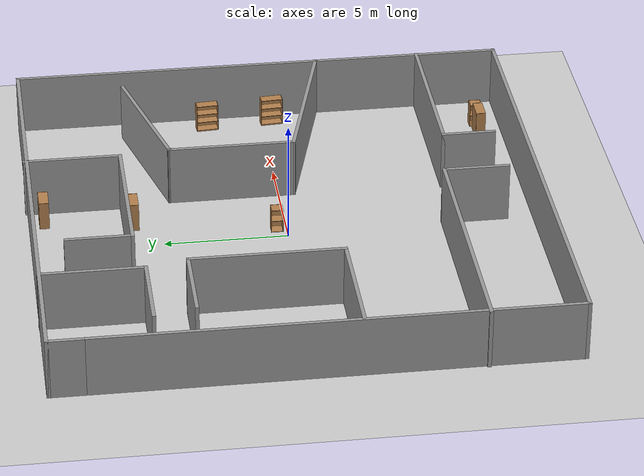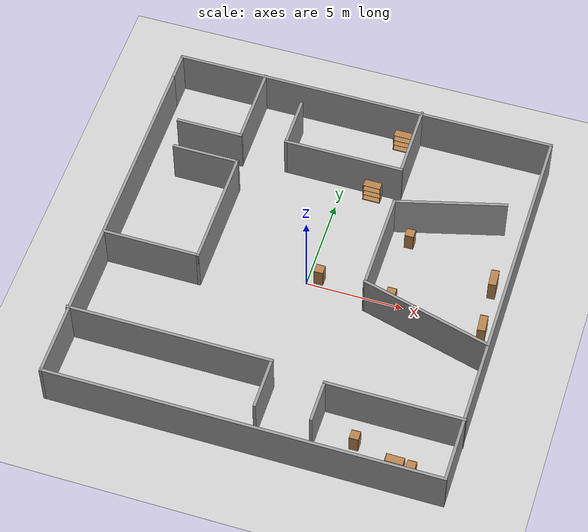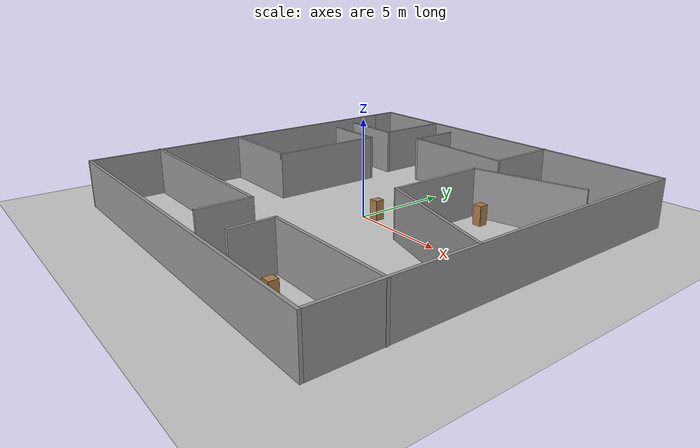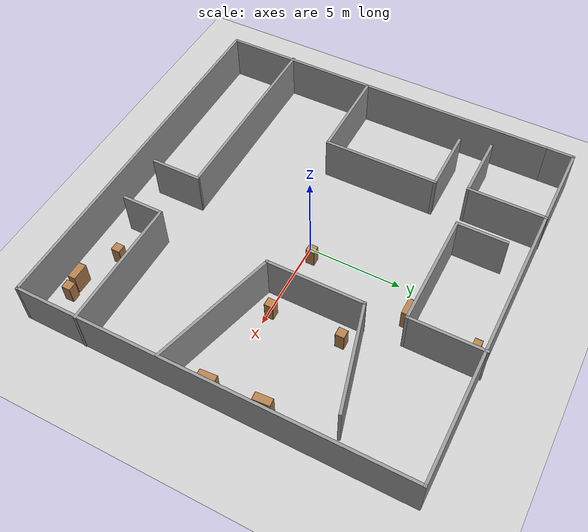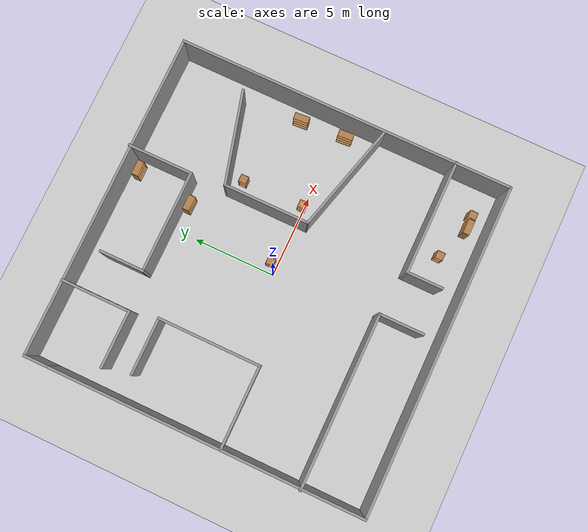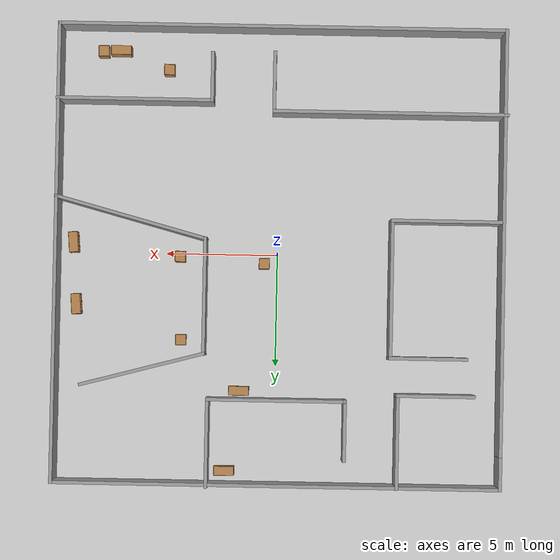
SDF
<sdf version="1.6">
 <world name="default">
  <model name="ground_plane">
   <static>1</static>
   <link name="link">
    <collision name="collision">
     <geometry><plane><normal>0 0 1</normal><size>100 100</size></plane></geometry>
     <surface><friction><ode><mu>100</mu><mu2>50</mu2></ode></friction></surface>
    </collision>
    <visual name="visual">
     <cast_shadows>0</cast_shadows>
     <geometry><plane><normal>0 0 1</normal><size>100 100</size></plane></geometry>
     <material>
      <script><uri>file://media/materials/scripts/gazebo.material</uri><name>Gazebo/Grey</name></script>
     </material>
    </visual>
   </link>
  </model>
  <model name="room">
   <pose>-0.112606 0.113774 0 0 -0 0</pose>
   <link name="Wall_11">
    <collision name="Wall_11_Collision">
     <geometry><box><size>20.5 0.15 2.5</size></box></geometry>
     <pose>0 0 1.25 0 -0 0</pose>
    </collision>
    <visual name="Wall_11_Visual">
     <pose>0 0 1.25 0 -0 0</pose>
     <geometry><box><size>20.5 0.15 2.5</size></box></geometry>
     <material>
      <script><uri>file://media/materials/scripts/gazebo.material</uri><name>Gazebo/Grey</name></script>
      <ambient>1 1 1 1</ambient>
     </material>
     <meta><layer>0</layer></meta>
    </visual>
    <pose>9.95208 -0.040419 0 0 -0 -1.5708</pose>
   </link>
   <link name="Wall_12">
    <collision name="Wall_12_Collision">
     <geometry><box><size>20 0.15 2.5</size></box></geometry>
     <pose>0 0 1.25 0 -0 0</pose>
    </collision>
    <visual name="Wall_12_Visual">
     <pose>0 0 1.25 0 -0 0</pose>
     <geometry><box><size>20 0.15 2.5</size></box></geometry>
     <material>
      <script><uri>file://media/materials/scripts/gazebo.material</uri><name>Gazebo/Grey</name></script>
      <ambient>1 1 1 1</ambient>
     </material>
     <meta><layer>0</layer></meta>
    </visual>
    <pose>0.027078 -10.2154 0 0 -0 3.14159</pose>
   </link>
   <link name="Wall_13">
    <collision name="Wall_13_Collision">
     <geometry><box><size>19 0.15 2.5</size></box></geometry>
     <pose>0 0 1.25 0 -0 0</pose>
    </collision>
    <visual name="Wall_13_Visual">
     <pose>0 0 1.25 0 -0 0</pose>
     <geometry><box><size>19 0.15 2.5</size></box></geometry>
     <material>
      <script><uri>file://media/materials/scripts/gazebo.material</uri><name>Gazebo/Grey</name></script>
      <ambient>1 1 1 1</ambient>
     </material>
     <meta><layer>0</layer></meta>
    </visual>
    <pose>-9.89792 -0.790419 0 0 -0 1.5708</pose>
   </link>
   <link name="Wall_15">
    <collision name="Wall_15_Collision">
     <geometry><box><size>7 0.15 2.5</size></box></geometry>
     <pose>0 0 1.25 0 -0 0</pose>
    </collision>
    <visual name="Wall_15_Visual">
     <pose>0 0 1.25 0 -0 0</pose>
     <geometry><box><size>7 0.15 2.5</size></box></geometry>
     <material>
      <script><uri>file://media/materials/scripts/gazebo.material</uri><name>Gazebo/Grey</name></script>
      <ambient>1 1 1 1</ambient>
     </material>
     <meta><layer>0</layer></meta>
    </visual>
    <pose>6.55322 -6.88699 0 0 -0 3.14159</pose>
   </link>
   <link name="Wall_16">
    <collision name="Wall_16_Collision">
     <geometry><box><size>2.25 0.15 2.5</size></box></geometry>
     <pose>0 0 1.25 0 -0 0</pose>
    </collision>
    <visual name="Wall_16_Visual">
     <pose>0 0 1.25 0 -0 0</pose>
     <geometry><box><size>2.25 0.15 2.5</size></box></geometry>
     <material>
      <script><uri>file://media/materials/scripts/gazebo.material</uri><name>Gazebo/Grey</name></script>
      <ambient>1 1 1 1</ambient>
     </material>
     <meta><layer>0</layer></meta>
    </visual>
    <pose>3.12822 -7.93699 0 0 -0 -1.5708</pose>
   </link>
   <link name="Wall_18">
    <collision name="Wall_18_Collision">
     <geometry><box><size>10.5 0.15 2.5</size></box></geometry>
     <pose>0 0 1.25 0 -0 0</pose>
    </collision>
    <visual name="Wall_18_Visual">
     <pose>0 0 1.25 0 -0 0</pose>
     <geometry><box><size>10.5 0.15 2.5</size></box></geometry>
     <material>
      <script><uri>file://media/materials/scripts/gazebo.material</uri><name>Gazebo/Grey</name></script>
      <ambient>1 1 1 1</ambient>
     </material>
     <meta><layer>0</layer></meta>
    </visual>
    <pose>-4.80322 -6.45897 0 0 -0 0</pose>
   </link>
   <link name="Wall_19">
    <collision name="Wall_19_Collision">
     <geometry><box><size>2.75 0.15 2.5</size></box></geometry>
     <pose>0 0 1.25 0 -0 0</pose>
    </collision>
    <visual name="Wall_19_Visual">
     <pose>0 0 1.25 0 -0 0</pose>
     <geometry><box><size>2.75 0.15 2.5</size></box></geometry>
     <material>
      <script><uri>file://media/materials/scripts/gazebo.material</uri><name>Gazebo/Grey</name></script>
      <ambient>1 1 1 1</ambient>
     </material>
     <meta><layer>0</layer></meta>
    </visual>
    <pose>0.371783 -7.75897 0 0 -0 -1.5708</pose>
   </link>
   <link name="Wall_21">
    <collision name="Wall_21_Collision">
     <geometry><box><size>5 0.15 2.5</size></box></geometry>
     <pose>0 0 1.25 0 -0 0</pose>
    </collision>
    <visual name="Wall_21_Visual">
     <pose>0 0 1.25 0 -0 0</pose>
     <geometry><box><size>5 0.15 2.5</size></box></geometry>
     <material>
      <script><uri>file://media/materials/scripts/gazebo.material</uri><name>Gazebo/Grey</name></script>
      <ambient>1 1 1 1</ambient>
     </material>
     <meta><layer>0</layer></meta>
    </visual>
    <pose>-7.39271 -1.69725 0 0 -0 0</pose>
   </link>
   <link name="Wall_22">
    <collision name="Wall_22_Collision">
     <geometry><box><size>6.25 0.15 2.5</size></box></geometry>
     <pose>0 0 1.25 0 -0 0</pose>
    </collision>
    <visual name="Wall_22_Visual">
     <pose>0 0 1.25 0 -0 0</pose>
     <geometry><box><size>6.25 0.15 2.5</size></box></geometry>
     <material>
      <script><uri>file://media/materials/scripts/gazebo.material</uri><name>Gazebo/Grey</name></script>
      <ambient>1 1 1 1</ambient>
     </material>
     <meta><layer>0</layer></meta>
    </visual>
    <pose>-4.96771 1.35275 0 0 -0 1.5708</pose>
   </link>
   <link name="Wall_23">
    <collision name="Wall_23_Collision">
     <geometry><box><size>3.5 0.15 2.5</size></box></geometry>
     <pose>0 0 1.25 0 -0 0</pose>
    </collision>
    <visual name="Wall_23_Visual">
     <pose>0 0 1.25 0 -0 0</pose>
     <geometry><box><size>3.5 0.15 2.5</size></box></geometry>
     <material>
      <script><uri>file://media/materials/scripts/gazebo.material</uri><name>Gazebo/Grey</name></script>
      <ambient>1 1 1 1</ambient>
     </material>
     <meta><layer>0</layer></meta>
    </visual>
    <pose>-6.64271 4.40275 0 0 -0 3.14159</pose>
   </link>
   <link name="Wall_26">
    <collision name="Wall_26_Collision">
     <geometry><box><size>4.25 0.15 2.5</size></box></geometry>
     <pose>0 0 1.25 0 -0 0</pose>
    </collision>
    <visual name="Wall_26_Visual">
     <pose>0 0 1.25 0 -0 0</pose>
     <geometry><box><size>4.25 0.15 2.5</size></box></geometry>
     <material>
      <script><uri>file://media/materials/scripts/gazebo.material</uri><name>Gazebo/Grey</name></script>
      <ambient>1 1 1 1</ambient>
     </material>
     <meta><layer>0</layer></meta>
    </visual>
    <pose>-5.3243 8.10389 0 0 -0 -1.5708</pose>
   </link>
   <link name="Wall_27">
    <collision name="Wall_27_Collision">
     <geometry><box><size>3.5 0.15 2.5</size></box></geometry>
     <pose>0 0 1.25 0 -0 0</pose>
    </collision>
    <visual name="Wall_27_Visual">
     <pose>0 0 1.25 0 -0 0</pose>
     <geometry><box><size>3.5 0.15 2.5</size></box></geometry>
     <material>
      <script><uri>file://media/materials/scripts/gazebo.material</uri><name>Gazebo/Grey</name></script>
      <ambient>1 1 1 1</ambient>
     </material>
     <meta><layer>0</layer></meta>
    </visual>
    <pose>-6.9993 6.05389 0 0 -0 3.14159</pose>
   </link>
   <link name="Wall_29">
    <collision name="Wall_29_Collision">
     <geometry><box><size>7 0.15 2.5</size></box></geometry>
     <pose>0 0 1.25 0 -0 0</pose>
    </collision>
    <visual name="Wall_29_Visual">
     <pose>0 0 1.25 0 -0 0</pose>
     <geometry><box><size>7 0.15 2.5</size></box></geometry>
     <material>
      <script><uri>file://media/materials/scripts/gazebo.material</uri><name>Gazebo/Grey</name></script>
      <ambient>1 1 1 1</ambient>
     </material>
     <meta><layer>0</layer></meta>
    </visual>
    <pose>6.62632 -1.63439 0 0 -0 2.87979</pose>
   </link>
   <link name="Wall_30">
    <collision name="Wall_30_Collision">
     <geometry><box><size>5.25 0.15 2.5</size></box></geometry>
     <pose>0 0 1.25 0 -0 0</pose>
    </collision>
    <visual name="Wall_30_Visual">
     <pose>0 0 1.25 0 -0 0</pose>
     <geometry><box><size>5.25 0.15 2.5</size></box></geometry>
     <material>
      <script><uri>file://media/materials/scripts/gazebo.material</uri><name>Gazebo/Grey</name></script>
      <ambient>1 1 1 1</ambient>
     </material>
     <meta><layer>0</layer></meta>
    </visual>
    <pose>3.31803 1.80206 0 0 -0 1.5708</pose>
   </link>
   <link name="Wall_31">
    <collision name="Wall_31_Collision">
     <geometry><box><size>5.75 0.15 2.5</size></box></geometry>
     <pose>0 0 1.25 0 -0 0</pose>
    </collision>
    <visual name="Wall_31_Visual">
     <pose>0 0 1.25 0 -0 0</pose>
     <geometry><box><size>5.75 0.15 2.5</size></box></geometry>
     <material>
      <script><uri>file://media/materials/scripts/gazebo.material</uri><name>Gazebo/Grey</name></script>
      <ambient>1 1 1 1</ambient>
     </material>
     <meta><layer>0</layer></meta>
    </visual>
    <pose>6.02262 5.07676 0 0 -0 0.261799</pose>
   </link>
   <link name="Wall_33">
    <collision name="Wall_33_Collision">
     <geometry><box><size>4 0.15 2.5</size></box></geometry>
     <pose>0 0 1.25 0 -0 0</pose>
    </collision>
    <visual name="Wall_33_Visual">
     <pose>0 0 1.25 0 -0 0</pose>
     <geometry><box><size>4 0.15 2.5</size></box></geometry>
     <material>
      <script><uri>file://media/materials/scripts/gazebo.material</uri><name>Gazebo/Grey</name></script>
      <ambient>1 1 1 1</ambient>
     </material>
     <meta><layer>0</layer></meta>
    </visual>
    <pose>3.10502 8.29042 0 0 -0 -1.5708</pose>
   </link>
   <link name="Wall_34">
    <collision name="Wall_34_Collision">
     <geometry><box><size>6.25 0.15 2.5</size></box></geometry>
     <pose>0 0 1.25 0 -0 0</pose>
    </collision>
    <visual name="Wall_34_Visual">
     <pose>0 0 1.25 0 -0 0</pose>
     <geometry><box><size>6.25 0.15 2.5</size></box></geometry>
     <material>
      <script><uri>file://media/materials/scripts/gazebo.material</uri><name>Gazebo/Grey</name></script>
      <ambient>1 1 1 1</ambient>
     </material>
     <meta><layer>0</layer></meta>
    </visual>
    <pose>0.055024 6.36542 0 0 -0 3.14159</pose>
   </link>
   <link name="Wall_35">
    <collision name="Wall_35_Collision">
     <geometry><box><size>2.75 0.15 2.5</size></box></geometry>
     <pose>0 0 1.25 0 -0 0</pose>
    </collision>
    <visual name="Wall_35_Visual">
     <pose>0 0 1.25 0 -0 0</pose>
     <geometry><box><size>2.75 0.15 2.5</size></box></geometry>
     <material>
      <script><uri>file://media/materials/scripts/gazebo.material</uri><name>Gazebo/Grey</name></script>
      <ambient>1 1 1 1</ambient>
     </material>
     <meta><layer>0</layer></meta>
    </visual>
    <pose>-2.99498 7.66542 0 0 -0 1.5708</pose>
   </link>
   <link name="Wall_5">
    <collision name="Wall_5_Collision">
     <geometry><box><size>1.5 0.15 2.5</size></box></geometry>
     <pose>0 0 1.25 0 -0 0</pose>
    </collision>
    <visual name="Wall_5_Visual">
     <pose>0 0 1.25 0 -0 0</pose>
     <geometry><box><size>1.5 0.15 2.5</size></box></geometry>
     <material>
      <script><uri>file://media/materials/scripts/gazebo.material</uri><name>Gazebo/Grey</name></script>
      <ambient>1 1 1 1</ambient>
     </material>
     <meta><layer>0</layer></meta>
    </visual>
    <pose>-9.89792 9.45958 0 0 -0 1.5708</pose>
   </link>
   <link name="Wall_7">
    <collision name="Wall_7_Collision">
     <geometry><box><size>20 0.15 2.5</size></box></geometry>
     <pose>0 0 1.25 0 -0 0</pose>
    </collision>
    <visual name="Wall_7_Visual">
     <pose>0 0 1.25 0 -0 0</pose>
     <geometry><box><size>20 0.15 2.5</size></box></geometry>
     <material>
      <script><uri>file://media/materials/scripts/gazebo.material</uri><name>Gazebo/Grey</name></script>
      <ambient>1 1 1 1</ambient>
     </material>
     <meta><layer>0</layer></meta>
    </visual>
    <pose>0.027078 10.1346 0 0 -0 0</pose>
   </link>
   <static>1</static>
  </model>
  <model name="bookshelf">
   <static>1</static>
   <link name="link">
    <inertial><mass>1</mass></inertial>
    <collision name="back">
     <pose>0 0.005 0.6 0 -0 0</pose>
     <geometry><box><size>0.9 0.01 1.2</size></box></geometry>
    </collision>
    <visual name="visual1">
     <pose>0 0.005 0.6 0 -0 0</pose>
     <geometry><box><size>0.9 0.01 1.2</size></box></geometry>
     <material>
      <script><uri>file://media/materials/scripts/gazebo.material</uri><name>Gazebo/Wood</name></script>
     </material>
    </visual>
    <collision name="left_side">
     <pose>0.45 -0.195 0.6 0 -0 0</pose>
     <geometry><box><size>0.02 0.4 1.2</size></box></geometry>
    </collision>
    <visual name="visual2">
     <pose>0.45 -0.195 0.6 0 -0 0</pose>
     <geometry><box><size>0.02 0.4 1.2</size></box></geometry>
     <material>
      <script><uri>file://media/materials/scripts/gazebo.material</uri><name>Gazebo/Wood</name></script>
     </material>
    </visual>
    <collision name="right_side">
     <pose>-0.45 -0.195 0.6 0 -0 0</pose>
     <geometry><box><size>0.02 0.4 1.2</size></box></geometry>
    </collision>
    <visual name="visual3">
     <pose>-0.45 -0.195 0.6 0 -0 0</pose>
     <geometry><box><size>0.02 0.4 1.2</size></box></geometry>
     <material>
      <script><uri>file://media/materials/scripts/gazebo.material</uri><name>Gazebo/Wood</name></script>
     </material>
    </visual>
    <collision name="bottom">
     <pose>0 -0.195 0.03 0 -0 0</pose>
     <geometry><box><size>0.88 0.4 0.06</size></box></geometry>
    </collision>
    <visual name="visual4">
     <pose>0 -0.195 0.03 0 -0 0</pose>
     <geometry><box><size>0.88 0.4 0.06</size></box></geometry>
     <material>
      <script><uri>file://media/materials/scripts/gazebo.material</uri><name>Gazebo/Wood</name></script>
     </material>
    </visual>
    <collision name="top">
     <pose>0 -0.195 1.19 0 -0 0</pose>
     <geometry><box><size>0.88 0.4 0.02</size></box></geometry>
    </collision>
    <visual name="visual5">
     <pose>0 -0.195 1.19 0 -0 0</pose>
     <geometry><box><size>0.88 0.4 0.02</size></box></geometry>
     <material>
      <script><uri>file://media/materials/scripts/gazebo.material</uri><name>Gazebo/Wood</name></script>
     </material>
    </visual>
    <collision name="low_shelf">
     <pose>0 -0.195 0.43 0 -0 0</pose>
     <geometry><box><size>0.88 0.4 0.02</size></box></geometry>
    </collision>
    <visual name="visual6">
     <pose>0 -0.195 0.43 0 -0 0</pose>
     <geometry><box><size>0.88 0.4 0.02</size></box></geometry>
     <material>
      <script><uri>file://media/materials/scripts/gazebo.material</uri><name>Gazebo/Wood</name></script>
     </material>
    </visual>
    <collision name="high_shelf">
     <pose>0 -0.195 0.8 0 -0 0</pose>
     <geometry><box><size>0.88 0.4 0.02</size></box></geometry>
    </collision>
    <visual name="visual7">
     <pose>0 -0.195 0.8 0 -0 0</pose>
     <geometry><box><size>0.88 0.4 0.02</size></box></geometry>
     <material>
      <script><uri>file://media/materials/scripts/gazebo.material</uri><name>Gazebo/Wood</name></script>
     </material>
    </visual>
   </link>
   <pose>1.63154 6.3022 0 0 -0 0</pose>
  </model>
  <model name="cabinet_0">
   <static>1</static>
   <link name="cabinet_bottom_plate">
    <inertial>
     <pose>0 0 -1 0 -0 0</pose>
     <inertia><ixx>2.05</ixx><ixy>0</ixy><ixz>0</ixz><iyy>2.05</iyy><iyz>0</iyz><izz>2.05</izz></inertia>
     <mass>25</mass>
    </inertial>
    <collision name="cabinet_bottom_plate_geom">
     <pose>0 0 0.01 0 -0 0</pose>
     <geometry><box><size>0.45 0.45 0.02</size></box></geometry>
    </collision>
    <visual name="cabinet_bottom_plate_geom_visual">
     <pose>0 0 0.01 0 -0 0</pose>
     <geometry><box><size>0.45 0.45 0.02</size></box></geometry>
     <material>
      <script><uri>file://media/materials/scripts/gazebo.material</uri><name>Gazebo/Wood</name></script>
     </material>
    </visual>
    <collision name="cabinet_bottom_plate_geom_cabinet_back_plate">
     <pose>0.235 0 0.51 0 -0 0</pose>
     <geometry><box><size>0.02 0.45 1.02</size></box></geometry>
    </collision>
    <visual name="cabinet_bottom_plate_geom_cabinet_back_plate_visual">
     <pose>0.235 0 0.51 0 -0 0</pose>
     <geometry><box><size>0.02 0.45 1.02</size></box></geometry>
     <material>
      <script><uri>file://media/materials/scripts/gazebo.material</uri><name>Gazebo/Wood</name></script>
     </material>
    </visual>
    <collision name="cabinet_bottom_plate_geom_cabinet_left_plate">
     <pose>0 0.235 0.51 0 -0 0</pose>
     <geometry><box><size>0.45 0.02 1.02</size></box></geometry>
    </collision>
    <visual name="cabinet_bottom_plate_geom_cabinet_left_plate_visual">
     <pose>0 0.235 0.51 0 -0 0</pose>
     <geometry><box><size>0.45 0.02 1.02</size></box></geometry>
     <material>
      <script><uri>file://media/materials/scripts/gazebo.material</uri><name>Gazebo/Wood</name></script>
     </material>
    </visual>
    <collision name="cabinet_bottom_plate_geom_cabinet_middle_plate">
     <pose>0 0 0.51 0 -0 0</pose>
     <geometry><box><size>0.45 0.45 0.02</size></box></geometry>
    </collision>
    <visual name="cabinet_bottom_plate_geom_cabinet_middle_plate_visual">
     <pose>0 0 0.51 0 -0 0</pose>
     <geometry><box><size>0.45 0.45 0.02</size></box></geometry>
     <material>
      <script><uri>file://media/materials/scripts/gazebo.material</uri><name>Gazebo/Wood</name></script>
     </material>
    </visual>
    <collision name="cabinet_bottom_plate_geom_cabinet_right_plate">
     <pose>0 -0.235 0.51 0 -0 0</pose>
     <geometry><box><size>0.45 0.02 1.02</size></box></geometry>
    </collision>
    <visual name="cabinet_bottom_plate_geom_cabinet_right_plate_visual">
     <pose>0 -0.235 0.51 0 -0 0</pose>
     <geometry><box><size>0.45 0.02 1.02</size></box></geometry>
     <material>
      <script><uri>file://media/materials/scripts/gazebo.material</uri><name>Gazebo/Wood</name></script>
     </material>
    </visual>
    <collision name="cabinet_bottom_plate_geom_cabinet_top_plate">
     <pose>0 0 1.01 0 -0 0</pose>
     <geometry><box><size>0.45 0.45 0.02</size></box></geometry>
    </collision>
    <visual name="cabinet_bottom_plate_geom_cabinet_top_plate_visual">
     <pose>0 0 1.01 0 -0 0</pose>
     <geometry><box><size>0.45 0.45 0.02</size></box></geometry>
     <material>
      <script><uri>file://media/materials/scripts/gazebo.material</uri><name>Gazebo/Wood</name></script>
     </material>
    </visual>
   </link>
   <pose>0.574896 0.397613 0 0 -0 0</pose>
  </model>
  <model name="cabinet_7">
   <static>1</static>
   <link name="cabinet_bottom_plate">
    <inertial>
     <pose>0 0 -1 0 -0 0</pose>
     <inertia><ixx>2.05</ixx><ixy>0</ixy><ixz>0</ixz><iyy>2.05</iyy><iyz>0</iyz><izz>2.05</izz></inertia>
     <mass>25</mass>
    </inertial>
    <collision name="cabinet_bottom_plate_geom">
     <pose>0 0 0.01 0 -0 0</pose>
     <geometry><box><size>0.45 0.45 0.02</size></box></geometry>
    </collision>
    <visual name="cabinet_bottom_plate_geom_visual">
     <pose>0 0 0.01 0 -0 0</pose>
     <geometry><box><size>0.45 0.45 0.02</size></box></geometry>
     <material>
      <script><uri>file://media/materials/scripts/gazebo.material</uri><name>Gazebo/Wood</name></script>
     </material>
    </visual>
    <collision name="cabinet_bottom_plate_geom_cabinet_back_plate">
     <pose>0.235 0 0.51 0 -0 0</pose>
     <geometry><box><size>0.02 0.45 1.02</size></box></geometry>
    </collision>
    <visual name="cabinet_bottom_plate_geom_cabinet_back_plate_visual">
     <pose>0.235 0 0.51 0 -0 0</pose>
     <geometry><box><size>0.02 0.45 1.02</size></box></geometry>
     <material>
      <script><uri>file://media/materials/scripts/gazebo.material</uri><name>Gazebo/Wood</name></script>
     </material>
    </visual>
    <collision name="cabinet_bottom_plate_geom_cabinet_left_plate">
     <pose>0 0.235 0.51 0 -0 0</pose>
     <geometry><box><size>0.45 0.02 1.02</size></box></geometry>
    </collision>
    <visual name="cabinet_bottom_plate_geom_cabinet_left_plate_visual">
     <pose>0 0.235 0.51 0 -0 0</pose>
     <geometry><box><size>0.45 0.02 1.02</size></box></geometry>
     <material>
      <script><uri>file://media/materials/scripts/gazebo.material</uri><name>Gazebo/Wood</name></script>
     </material>
    </visual>
    <collision name="cabinet_bottom_plate_geom_cabinet_middle_plate">
     <pose>0 0 0.51 0 -0 0</pose>
     <geometry><box><size>0.45 0.45 0.02</size></box></geometry>
    </collision>
    <visual name="cabinet_bottom_plate_geom_cabinet_middle_plate_visual">
     <pose>0 0 0.51 0 -0 0</pose>
     <geometry><box><size>0.45 0.45 0.02</size></box></geometry>
     <material>
      <script><uri>file://media/materials/scripts/gazebo.material</uri><name>Gazebo/Wood</name></script>
     </material>
    </visual>
    <collision name="cabinet_bottom_plate_geom_cabinet_right_plate">
     <pose>0 -0.235 0.51 0 -0 0</pose>
     <geometry><box><size>0.45 0.02 1.02</size></box></geometry>
    </collision>
    <visual name="cabinet_bottom_plate_geom_cabinet_right_plate_visual">
     <pose>0 -0.235 0.51 0 -0 0</pose>
     <geometry><box><size>0.45 0.02 1.02</size></box></geometry>
     <material>
      <script><uri>file://media/materials/scripts/gazebo.material</uri><name>Gazebo/Wood</name></script>
     </material>
    </visual>
    <collision name="cabinet_bottom_plate_geom_cabinet_top_plate">
     <pose>0 0 1.01 0 -0 0</pose>
     <geometry><box><size>0.45 0.45 0.02</size></box></geometry>
    </collision>
    <visual name="cabinet_bottom_plate_geom_cabinet_top_plate_visual">
     <pose>0 0 1.01 0 -0 0</pose>
     <geometry><box><size>0.45 0.45 0.02</size></box></geometry>
     <material>
      <script><uri>file://media/materials/scripts/gazebo.material</uri><name>Gazebo/Wood</name></script>
     </material>
    </visual>
   </link>
   <pose>4.98483 -8.2471 0 0 -0 0</pose>
  </model>
  <model name="cabinet_9">
   <static>1</static>
   <link name="cabinet_bottom_plate">
    <inertial>
     <pose>0 0 -1 0 -0 0</pose>
     <inertia><ixx>2.05</ixx><ixy>0</ixy><ixz>0</ixz><iyy>2.05</iyy><iyz>0</iyz><izz>2.05</izz></inertia>
     <mass>25</mass>
    </inertial>
    <collision name="cabinet_bottom_plate_geom">
     <pose>0 0 0.01 0 -0 0</pose>
     <geometry><box><size>0.45 0.45 0.02</size></box></geometry>
    </collision>
    <visual name="cabinet_bottom_plate_geom_visual">
     <pose>0 0 0.01 0 -0 0</pose>
     <geometry><box><size>0.45 0.45 0.02</size></box></geometry>
     <material>
      <script><uri>file://media/materials/scripts/gazebo.material</uri><name>Gazebo/Wood</name></script>
     </material>
    </visual>
    <collision name="cabinet_bottom_plate_geom_cabinet_back_plate">
     <pose>0.235 0 0.51 0 -0 0</pose>
     <geometry><box><size>0.02 0.45 1.02</size></box></geometry>
    </collision>
    <visual name="cabinet_bottom_plate_geom_cabinet_back_plate_visual">
     <pose>0.235 0 0.51 0 -0 0</pose>
     <geometry><box><size>0.02 0.45 1.02</size></box></geometry>
     <material>
      <script><uri>file://media/materials/scripts/gazebo.material</uri><name>Gazebo/Wood</name></script>
     </material>
    </visual>
    <collision name="cabinet_bottom_plate_geom_cabinet_left_plate">
     <pose>0 0.235 0.51 0 -0 0</pose>
     <geometry><box><size>0.45 0.02 1.02</size></box></geometry>
    </collision>
    <visual name="cabinet_bottom_plate_geom_cabinet_left_plate_visual">
     <pose>0 0.235 0.51 0 -0 0</pose>
     <geometry><box><size>0.45 0.02 1.02</size></box></geometry>
     <material>
      <script><uri>file://media/materials/scripts/gazebo.material</uri><name>Gazebo/Wood</name></script>
     </material>
    </visual>
    <collision name="cabinet_bottom_plate_geom_cabinet_middle_plate">
     <pose>0 0 0.51 0 -0 0</pose>
     <geometry><box><size>0.45 0.45 0.02</size></box></geometry>
    </collision>
    <visual name="cabinet_bottom_plate_geom_cabinet_middle_plate_visual">
     <pose>0 0 0.51 0 -0 0</pose>
     <geometry><box><size>0.45 0.45 0.02</size></box></geometry>
     <material>
      <script><uri>file://media/materials/scripts/gazebo.material</uri><name>Gazebo/Wood</name></script>
     </material>
    </visual>
    <collision name="cabinet_bottom_plate_geom_cabinet_right_plate">
     <pose>0 -0.235 0.51 0 -0 0</pose>
     <geometry><box><size>0.45 0.02 1.02</size></box></geometry>
    </collision>
    <visual name="cabinet_bottom_plate_geom_cabinet_right_plate_visual">
     <pose>0 -0.235 0.51 0 -0 0</pose>
     <geometry><box><size>0.45 0.02 1.02</size></box></geometry>
     <material>
      <script><uri>file://media/materials/scripts/gazebo.material</uri><name>Gazebo/Wood</name></script>
     </material>
    </visual>
    <collision name="cabinet_bottom_plate_geom_cabinet_top_plate">
     <pose>0 0 1.01 0 -0 0</pose>
     <geometry><box><size>0.45 0.45 0.02</size></box></geometry>
    </collision>
    <visual name="cabinet_bottom_plate_geom_cabinet_top_plate_visual">
     <pose>0 0 1.01 0 -0 0</pose>
     <geometry><box><size>0.45 0.45 0.02</size></box></geometry>
     <material>
      <script><uri>file://media/materials/scripts/gazebo.material</uri><name>Gazebo/Wood</name></script>
     </material>
    </visual>
   </link>
   <pose>7.95276 -9.03419 0 0 -0 0</pose>
  </model>
  <model name="cabinet_10">
   <static>1</static>
   <link name="cabinet_bottom_plate">
    <inertial>
     <pose>0 0 -1 0 -0 0</pose>
     <inertia><ixx>2.05</ixx><ixy>0</ixy><ixz>0</ixz><iyy>2.05</iyy><iyz>0</iyz><izz>2.05</izz></inertia>
     <mass>25</mass>
    </inertial>
    <collision name="cabinet_bottom_plate_geom">
     <pose>0 0 0.01 0 -0 0</pose>
     <geometry><box><size>0.45 0.45 0.02</size></box></geometry>
    </collision>
    <visual name="cabinet_bottom_plate_geom_visual">
     <pose>0 0 0.01 0 -0 0</pose>
     <geometry><box><size>0.45 0.45 0.02</size></box></geometry>
     <material>
      <script><uri>file://media/materials/scripts/gazebo.material</uri><name>Gazebo/Wood</name></script>
     </material>
    </visual>
    <collision name="cabinet_bottom_plate_geom_cabinet_back_plate">
     <pose>0.235 0 0.51 0 -0 0</pose>
     <geometry><box><size>0.02 0.45 1.02</size></box></geometry>
    </collision>
    <visual name="cabinet_bottom_plate_geom_cabinet_back_plate_visual">
     <pose>0.235 0 0.51 0 -0 0</pose>
     <geometry><box><size>0.02 0.45 1.02</size></box></geometry>
     <material>
      <script><uri>file://media/materials/scripts/gazebo.material</uri><name>Gazebo/Wood</name></script>
     </material>
    </visual>
    <collision name="cabinet_bottom_plate_geom_cabinet_left_plate">
     <pose>0 0.235 0.51 0 -0 0</pose>
     <geometry><box><size>0.45 0.02 1.02</size></box></geometry>
    </collision>
    <visual name="cabinet_bottom_plate_geom_cabinet_left_plate_visual">
     <pose>0 0.235 0.51 0 -0 0</pose>
     <geometry><box><size>0.45 0.02 1.02</size></box></geometry>
     <material>
      <script><uri>file://media/materials/scripts/gazebo.material</uri><name>Gazebo/Wood</name></script>
     </material>
    </visual>
    <collision name="cabinet_bottom_plate_geom_cabinet_middle_plate">
     <pose>0 0 0.51 0 -0 0</pose>
     <geometry><box><size>0.45 0.45 0.02</size></box></geometry>
    </collision>
    <visual name="cabinet_bottom_plate_geom_cabinet_middle_plate_visual">
     <pose>0 0 0.51 0 -0 0</pose>
     <geometry><box><size>0.45 0.45 0.02</size></box></geometry>
     <material>
      <script><uri>file://media/materials/scripts/gazebo.material</uri><name>Gazebo/Wood</name></script>
     </material>
    </visual>
    <collision name="cabinet_bottom_plate_geom_cabinet_right_plate">
     <pose>0 -0.235 0.51 0 -0 0</pose>
     <geometry><box><size>0.45 0.02 1.02</size></box></geometry>
    </collision>
    <visual name="cabinet_bottom_plate_geom_cabinet_right_plate_visual">
     <pose>0 -0.235 0.51 0 -0 0</pose>
     <geometry><box><size>0.45 0.02 1.02</size></box></geometry>
     <material>
      <script><uri>file://media/materials/scripts/gazebo.material</uri><name>Gazebo/Wood</name></script>
     </material>
    </visual>
    <collision name="cabinet_bottom_plate_geom_cabinet_top_plate">
     <pose>0 0 1.01 0 -0 0</pose>
     <geometry><box><size>0.45 0.45 0.02</size></box></geometry>
    </collision>
    <visual name="cabinet_bottom_plate_geom_cabinet_top_plate_visual">
     <pose>0 0 1.01 0 -0 0</pose>
     <geometry><box><size>0.45 0.45 0.02</size></box></geometry>
     <material>
      <script><uri>file://media/materials/scripts/gazebo.material</uri><name>Gazebo/Wood</name></script>
     </material>
    </visual>
   </link>
   <pose>4.26211 3.87399 0 0 -0 0</pose>
  </model>
  <model name="cabinet_11">
   <static>1</static>
   <link name="cabinet_bottom_plate">
    <inertial>
     <pose>0 0 -1 0 -0 0</pose>
     <inertia><ixx>2.05</ixx><ixy>0</ixy><ixz>0</ixz><iyy>2.05</iyy><iyz>0</iyz><izz>2.05</izz></inertia>
     <mass>25</mass>
    </inertial>
    <collision name="cabinet_bottom_plate_geom">
     <pose>0 0 0.01 0 -0 0</pose>
     <geometry><box><size>0.45 0.45 0.02</size></box></geometry>
    </collision>
    <visual name="cabinet_bottom_plate_geom_visual">
     <pose>0 0 0.01 0 -0 0</pose>
     <geometry><box><size>0.45 0.45 0.02</size></box></geometry>
     <material>
      <script><uri>file://media/materials/scripts/gazebo.material</uri><name>Gazebo/Wood</name></script>
     </material>
    </visual>
    <collision name="cabinet_bottom_plate_geom_cabinet_back_plate">
     <pose>0.235 0 0.51 0 -0 0</pose>
     <geometry><box><size>0.02 0.45 1.02</size></box></geometry>
    </collision>
    <visual name="cabinet_bottom_plate_geom_cabinet_back_plate_visual">
     <pose>0.235 0 0.51 0 -0 0</pose>
     <geometry><box><size>0.02 0.45 1.02</size></box></geometry>
     <material>
      <script><uri>file://media/materials/scripts/gazebo.material</uri><name>Gazebo/Wood</name></script>
     </material>
    </visual>
    <collision name="cabinet_bottom_plate_geom_cabinet_left_plate">
     <pose>0 0.235 0.51 0 -0 0</pose>
     <geometry><box><size>0.45 0.02 1.02</size></box></geometry>
    </collision>
    <visual name="cabinet_bottom_plate_geom_cabinet_left_plate_visual">
     <pose>0 0.235 0.51 0 -0 0</pose>
     <geometry><box><size>0.45 0.02 1.02</size></box></geometry>
     <material>
      <script><uri>file://media/materials/scripts/gazebo.material</uri><name>Gazebo/Wood</name></script>
     </material>
    </visual>
    <collision name="cabinet_bottom_plate_geom_cabinet_middle_plate">
     <pose>0 0 0.51 0 -0 0</pose>
     <geometry><box><size>0.45 0.45 0.02</size></box></geometry>
    </collision>
    <visual name="cabinet_bottom_plate_geom_cabinet_middle_plate_visual">
     <pose>0 0 0.51 0 -0 0</pose>
     <geometry><box><size>0.45 0.45 0.02</size></box></geometry>
     <material>
      <script><uri>file://media/materials/scripts/gazebo.material</uri><name>Gazebo/Wood</name></script>
     </material>
    </visual>
    <collision name="cabinet_bottom_plate_geom_cabinet_right_plate">
     <pose>0 -0.235 0.51 0 -0 0</pose>
     <geometry><box><size>0.45 0.02 1.02</size></box></geometry>
    </collision>
    <visual name="cabinet_bottom_plate_geom_cabinet_right_plate_visual">
     <pose>0 -0.235 0.51 0 -0 0</pose>
     <geometry><box><size>0.45 0.02 1.02</size></box></geometry>
     <material>
      <script><uri>file://media/materials/scripts/gazebo.material</uri><name>Gazebo/Wood</name></script>
     </material>
    </visual>
    <collision name="cabinet_bottom_plate_geom_cabinet_top_plate">
     <pose>0 0 1.01 0 -0 0</pose>
     <geometry><box><size>0.45 0.45 0.02</size></box></geometry>
    </collision>
    <visual name="cabinet_bottom_plate_geom_cabinet_top_plate_visual">
     <pose>0 0 1.01 0 -0 0</pose>
     <geometry><box><size>0.45 0.45 0.02</size></box></geometry>
     <material>
      <script><uri>file://media/materials/scripts/gazebo.material</uri><name>Gazebo/Wood</name></script>
     </material>
    </visual>
   </link>
   <pose>4.34413 0.14029 0 0 -0 0</pose>
  </model>
  <model name="bookshelf_4">
   <static>1</static>
   <link name="link">
    <inertial><mass>1</mass></inertial>
    <collision name="back">
     <pose>0 0.005 0.6 0 -0 0</pose>
     <geometry><box><size>0.9 0.01 1.2</size></box></geometry>
    </collision>
    <visual name="visual1">
     <pose>0 0.005 0.6 0 -0 0</pose>
     <geometry><box><size>0.9 0.01 1.2</size></box></geometry>
     <material>
      <script><uri>file://media/materials/scripts/gazebo.material</uri><name>Gazebo/Wood</name></script>
     </material>
    </visual>
    <collision name="left_side">
     <pose>0.45 -0.195 0.6 0 -0 0</pose>
     <geometry><box><size>0.02 0.4 1.2</size></box></geometry>
    </collision>
    <visual name="visual2">
     <pose>0.45 -0.195 0.6 0 -0 0</pose>
     <geometry><box><size>0.02 0.4 1.2</size></box></geometry>
     <material>
      <script><uri>file://media/materials/scripts/gazebo.material</uri><name>Gazebo/Wood</name></script>
     </material>
    </visual>
    <collision name="right_side">
     <pose>-0.45 -0.195 0.6 0 -0 0</pose>
     <geometry><box><size>0.02 0.4 1.2</size></box></geometry>
    </collision>
    <visual name="visual3">
     <pose>-0.45 -0.195 0.6 0 -0 0</pose>
     <geometry><box><size>0.02 0.4 1.2</size></box></geometry>
     <material>
      <script><uri>file://media/materials/scripts/gazebo.material</uri><name>Gazebo/Wood</name></script>
     </material>
    </visual>
    <collision name="bottom">
     <pose>0 -0.195 0.03 0 -0 0</pose>
     <geometry><box><size>0.88 0.4 0.06</size></box></geometry>
    </collision>
    <visual name="visual4">
     <pose>0 -0.195 0.03 0 -0 0</pose>
     <geometry><box><size>0.88 0.4 0.06</size></box></geometry>
     <material>
      <script><uri>file://media/materials/scripts/gazebo.material</uri><name>Gazebo/Wood</name></script>
     </material>
    </visual>
    <collision name="top">
     <pose>0 -0.195 1.19 0 -0 0</pose>
     <geometry><box><size>0.88 0.4 0.02</size></box></geometry>
    </collision>
    <visual name="visual5">
     <pose>0 -0.195 1.19 0 -0 0</pose>
     <geometry><box><size>0.88 0.4 0.02</size></box></geometry>
     <material>
      <script><uri>file://media/materials/scripts/gazebo.material</uri><name>Gazebo/Wood</name></script>
     </material>
    </visual>
    <collision name="low_shelf">
     <pose>0 -0.195 0.43 0 -0 0</pose>
     <geometry><box><size>0.88 0.4 0.02</size></box></geometry>
    </collision>
    <visual name="visual6">
     <pose>0 -0.195 0.43 0 -0 0</pose>
     <geometry><box><size>0.88 0.4 0.02</size></box></geometry>
     <material>
      <script><uri>file://media/materials/scripts/gazebo.material</uri><name>Gazebo/Wood</name></script>
     </material>
    </visual>
    <collision name="high_shelf">
     <pose>0 -0.195 0.8 0 -0 0</pose>
     <geometry><box><size>0.88 0.4 0.02</size></box></geometry>
    </collision>
    <visual name="visual7">
     <pose>0 -0.195 0.8 0 -0 0</pose>
     <geometry><box><size>0.88 0.4 0.02</size></box></geometry>
     <material>
      <script><uri>file://media/materials/scripts/gazebo.material</uri><name>Gazebo/Wood</name></script>
     </material>
    </visual>
   </link>
   <pose>7.16822 -8.8741 0 0 -0 0</pose>
  </model>
  <model name="bookshelf_5">
   <static>1</static>
   <link name="link">
    <inertial><mass>1</mass></inertial>
    <collision name="back">
     <pose>0 0.005 0.6 0 -0 0</pose>
     <geometry><box><size>0.9 0.01 1.2</size></box></geometry>
    </collision>
    <visual name="visual1">
     <pose>0 0.005 0.6 0 -0 0</pose>
     <geometry><box><size>0.9 0.01 1.2</size></box></geometry>
     <material>
      <script><uri>file://media/materials/scripts/gazebo.material</uri><name>Gazebo/Wood</name></script>
     </material>
    </visual>
    <collision name="left_side">
     <pose>0.45 -0.195 0.6 0 -0 0</pose>
     <geometry><box><size>0.02 0.4 1.2</size></box></geometry>
    </collision>
    <visual name="visual2">
     <pose>0.45 -0.195 0.6 0 -0 0</pose>
     <geometry><box><size>0.02 0.4 1.2</size></box></geometry>
     <material>
      <script><uri>file://media/materials/scripts/gazebo.material</uri><name>Gazebo/Wood</name></script>
     </material>
    </visual>
    <collision name="right_side">
     <pose>-0.45 -0.195 0.6 0 -0 0</pose>
     <geometry><box><size>0.02 0.4 1.2</size></box></geometry>
    </collision>
    <visual name="visual3">
     <pose>-0.45 -0.195 0.6 0 -0 0</pose>
     <geometry><box><size>0.02 0.4 1.2</size></box></geometry>
     <material>
      <script><uri>file://media/materials/scripts/gazebo.material</uri><name>Gazebo/Wood</name></script>
     </material>
    </visual>
    <collision name="bottom">
     <pose>0 -0.195 0.03 0 -0 0</pose>
     <geometry><box><size>0.88 0.4 0.06</size></box></geometry>
    </collision>
    <visual name="visual4">
     <pose>0 -0.195 0.03 0 -0 0</pose>
     <geometry><box><size>0.88 0.4 0.06</size></box></geometry>
     <material>
      <script><uri>file://media/materials/scripts/gazebo.material</uri><name>Gazebo/Wood</name></script>
     </material>
    </visual>
    <collision name="top">
     <pose>0 -0.195 1.19 0 -0 0</pose>
     <geometry><box><size>0.88 0.4 0.02</size></box></geometry>
    </collision>
    <visual name="visual5">
     <pose>0 -0.195 1.19 0 -0 0</pose>
     <geometry><box><size>0.88 0.4 0.02</size></box></geometry>
     <material>
      <script><uri>file://media/materials/scripts/gazebo.material</uri><name>Gazebo/Wood</name></script>
     </material>
    </visual>
    <collision name="low_shelf">
     <pose>0 -0.195 0.43 0 -0 0</pose>
     <geometry><box><size>0.88 0.4 0.02</size></box></geometry>
    </collision>
    <visual name="visual6">
     <pose>0 -0.195 0.43 0 -0 0</pose>
     <geometry><box><size>0.88 0.4 0.02</size></box></geometry>
     <material>
      <script><uri>file://media/materials/scripts/gazebo.material</uri><name>Gazebo/Wood</name></script>
     </material>
    </visual>
    <collision name="high_shelf">
     <pose>0 -0.195 0.8 0 -0 0</pose>
     <geometry><box><size>0.88 0.4 0.02</size></box></geometry>
    </collision>
    <visual name="visual7">
     <pose>0 -0.195 0.8 0 -0 0</pose>
     <geometry><box><size>0.88 0.4 0.02</size></box></geometry>
     <material>
      <script><uri>file://media/materials/scripts/gazebo.material</uri><name>Gazebo/Wood</name></script>
     </material>
    </visual>
   </link>
   <pose>9.33687 -0.412596 0 0 0 -1.5</pose>
  </model>
  <model name="bookshelf_6">
   <static>1</static>
   <link name="link">
    <inertial><mass>1</mass></inertial>
    <collision name="back">
     <pose>0 0.005 0.6 0 -0 0</pose>
     <geometry><box><size>0.9 0.01 1.2</size></box></geometry>
    </collision>
    <visual name="visual1">
     <pose>0 0.005 0.6 0 -0 0</pose>
     <geometry><box><size>0.9 0.01 1.2</size></box></geometry>
     <material>
      <script><uri>file://media/materials/scripts/gazebo.material</uri><name>Gazebo/Wood</name></script>
     </material>
    </visual>
    <collision name="left_side">
     <pose>0.45 -0.195 0.6 0 -0 0</pose>
     <geometry><box><size>0.02 0.4 1.2</size></box></geometry>
    </collision>
    <visual name="visual2">
     <pose>0.45 -0.195 0.6 0 -0 0</pose>
     <geometry><box><size>0.02 0.4 1.2</size></box></geometry>
     <material>
      <script><uri>file://media/materials/scripts/gazebo.material</uri><name>Gazebo/Wood</name></script>
     </material>
    </visual>
    <collision name="right_side">
     <pose>-0.45 -0.195 0.6 0 -0 0</pose>
     <geometry><box><size>0.02 0.4 1.2</size></box></geometry>
    </collision>
    <visual name="visual3">
     <pose>-0.45 -0.195 0.6 0 -0 0</pose>
     <geometry><box><size>0.02 0.4 1.2</size></box></geometry>
     <material>
      <script><uri>file://media/materials/scripts/gazebo.material</uri><name>Gazebo/Wood</name></script>
     </material>
    </visual>
    <collision name="bottom">
     <pose>0 -0.195 0.03 0 -0 0</pose>
     <geometry><box><size>0.88 0.4 0.06</size></box></geometry>
    </collision>
    <visual name="visual4">
     <pose>0 -0.195 0.03 0 -0 0</pose>
     <geometry><box><size>0.88 0.4 0.06</size></box></geometry>
     <material>
      <script><uri>file://media/materials/scripts/gazebo.material</uri><name>Gazebo/Wood</name></script>
     </material>
    </visual>
    <collision name="top">
     <pose>0 -0.195 1.19 0 -0 0</pose>
     <geometry><box><size>0.88 0.4 0.02</size></box></geometry>
    </collision>
    <visual name="visual5">
     <pose>0 -0.195 1.19 0 -0 0</pose>
     <geometry><box><size>0.88 0.4 0.02</size></box></geometry>
     <material>
      <script><uri>file://media/materials/scripts/gazebo.material</uri><name>Gazebo/Wood</name></script>
     </material>
    </visual>
    <collision name="low_shelf">
     <pose>0 -0.195 0.43 0 -0 0</pose>
     <geometry><box><size>0.88 0.4 0.02</size></box></geometry>
    </collision>
    <visual name="visual6">
     <pose>0 -0.195 0.43 0 -0 0</pose>
     <geometry><box><size>0.88 0.4 0.02</size></box></geometry>
     <material>
      <script><uri>file://media/materials/scripts/gazebo.material</uri><name>Gazebo/Wood</name></script>
     </material>
    </visual>
    <collision name="high_shelf">
     <pose>0 -0.195 0.8 0 -0 0</pose>
     <geometry><box><size>0.88 0.4 0.02</size></box></geometry>
    </collision>
    <visual name="visual7">
     <pose>0 -0.195 0.8 0 -0 0</pose>
     <geometry><box><size>0.88 0.4 0.02</size></box></geometry>
     <material>
      <script><uri>file://media/materials/scripts/gazebo.material</uri><name>Gazebo/Wood</name></script>
     </material>
    </visual>
   </link>
   <pose>9.17442 2.3571 0 0 0 -1.5</pose>
  </model>
  <model name="bookshelf_7">
   <static>1</static>
   <link name="link">
    <inertial><mass>1</mass></inertial>
    <collision name="back">
     <pose>0 0.005 0.6 0 -0 0</pose>
     <geometry><box><size>0.9 0.01 1.2</size></box></geometry>
    </collision>
    <visual name="visual1">
     <pose>0 0.005 0.6 0 -0 0</pose>
     <geometry><box><size>0.9 0.01 1.2</size></box></geometry>
     <material>
      <script><uri>file://media/materials/scripts/gazebo.material</uri><name>Gazebo/Wood</name></script>
     </material>
    </visual>
    <collision name="left_side">
     <pose>0.45 -0.195 0.6 0 -0 0</pose>
     <geometry><box><size>0.02 0.4 1.2</size></box></geometry>
    </collision>
    <visual name="visual2">
     <pose>0.45 -0.195 0.6 0 -0 0</pose>
     <geometry><box><size>0.02 0.4 1.2</size></box></geometry>
     <material>
      <script><uri>file://media/materials/scripts/gazebo.material</uri><name>Gazebo/Wood</name></script>
     </material>
    </visual>
    <collision name="right_side">
     <pose>-0.45 -0.195 0.6 0 -0 0</pose>
     <geometry><box><size>0.02 0.4 1.2</size></box></geometry>
    </collision>
    <visual name="visual3">
     <pose>-0.45 -0.195 0.6 0 -0 0</pose>
     <geometry><box><size>0.02 0.4 1.2</size></box></geometry>
     <material>
      <script><uri>file://media/materials/scripts/gazebo.material</uri><name>Gazebo/Wood</name></script>
     </material>
    </visual>
    <collision name="bottom">
     <pose>0 -0.195 0.03 0 -0 0</pose>
     <geometry><box><size>0.88 0.4 0.06</size></box></geometry>
    </collision>
    <visual name="visual4">
     <pose>0 -0.195 0.03 0 -0 0</pose>
     <geometry><box><size>0.88 0.4 0.06</size></box></geometry>
     <material>
      <script><uri>file://media/materials/scripts/gazebo.material</uri><name>Gazebo/Wood</name></script>
     </material>
    </visual>
    <collision name="top">
     <pose>0 -0.195 1.19 0 -0 0</pose>
     <geometry><box><size>0.88 0.4 0.02</size></box></geometry>
    </collision>
    <visual name="visual5">
     <pose>0 -0.195 1.19 0 -0 0</pose>
     <geometry><box><size>0.88 0.4 0.02</size></box></geometry>
     <material>
      <script><uri>file://media/materials/scripts/gazebo.material</uri><name>Gazebo/Wood</name></script>
     </material>
    </visual>
    <collision name="low_shelf">
     <pose>0 -0.195 0.43 0 -0 0</pose>
     <geometry><box><size>0.88 0.4 0.02</size></box></geometry>
    </collision>
    <visual name="visual6">
     <pose>0 -0.195 0.43 0 -0 0</pose>
     <geometry><box><size>0.88 0.4 0.02</size></box></geometry>
     <material>
      <script><uri>file://media/materials/scripts/gazebo.material</uri><name>Gazebo/Wood</name></script>
     </material>
    </visual>
    <collision name="high_shelf">
     <pose>0 -0.195 0.8 0 -0 0</pose>
     <geometry><box><size>0.88 0.4 0.02</size></box></geometry>
    </collision>
    <visual name="visual7">
     <pose>0 -0.195 0.8 0 -0 0</pose>
     <geometry><box><size>0.88 0.4 0.02</size></box></geometry>
     <material>
      <script><uri>file://media/materials/scripts/gazebo.material</uri><name>Gazebo/Wood</name></script>
     </material>
    </visual>
   </link>
   <pose>2.22614 9.8818 0 0 -0 0</pose>
  </model>
 </world>
</sdf>
